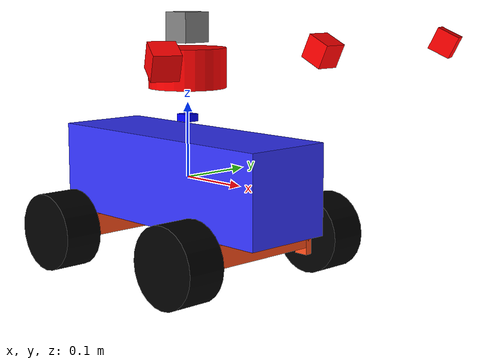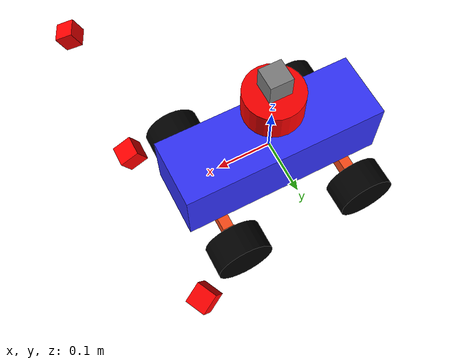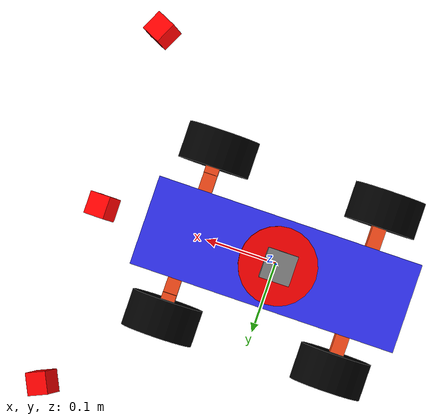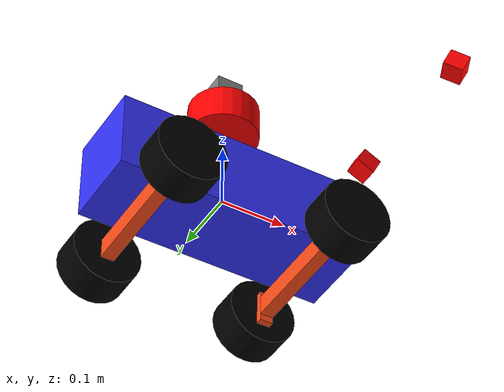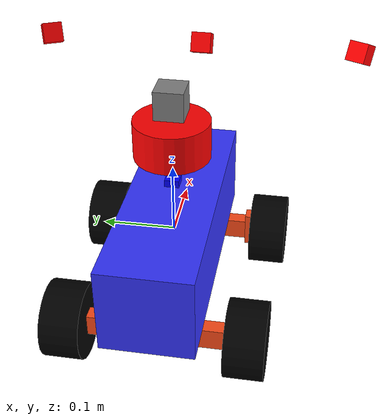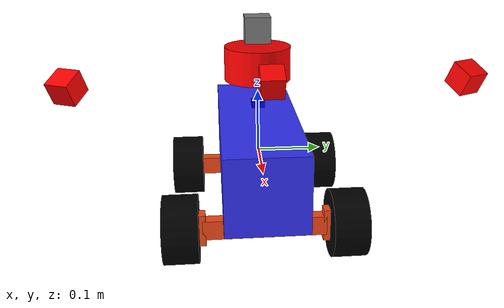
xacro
<?xml version="1.0"?>
<robot xmlns:xacro="http://www.ros.org/wiki/xacro" name="hotel_robot">

    <!-- Example link -->
    <xacro:include filename="properties.xacro"/>
    <xacro:include filename="ackerman_core.xacro"/>
    <xacro:include filename="lidar.xacro"/>
    <xacro:include filename="camera.xacro"/>
    <xacro:include filename="depth_camera.xacro"/>
    <xacro:include filename="imu.xacro"/>

</robot>

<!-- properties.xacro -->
<robot xmlns:xacro="http://www.ros.org/wiki/xacro">
    <!-- Color Definitions -->
    <material name="white">
        <color rgba= "1 1 1 1"/>
    </material>

    <material name="orange">
        <color rgba= "1 0.3 0.1 1"/>
    </material>

    <material name="blue">
        <color rgba= "0.2 0.2 1 1"/>
    </material>

    <material name="Terra">
        <color rgba= "1 0.25 0 1"/>
    </material>

    <material name="black">
        <color rgba= "0 0 0 1"/>
    </material>

    <material name="red">
        <color rgba= "1 0 0 1"/>
    </material>

</robot>

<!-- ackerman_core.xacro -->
<robot xmlns:xacro="http://www.ros.org/wiki/xacro">

    <!-- Example link -->
    <xacro:include filename="inertial_macros.xacro"/>

    <xacro:property name="rad_w" value="0.052"/>
    <xacro:property name="le_w" value="0.053"/>
    <xacro:property name="ly" value="0.125"/>
    <xacro:property name="lx" value="0.375"/>
    <xacro:property name="lz" value="0.12"/>
    <xacro:property name="lx_st" value="0.02"/>
    <xacro:property name="ly_st" value="${ly*3/2}"/>
    <xacro:property name="lz_st" value="0.03 "/>
    <xacro:property name="lx_arm" value="0.02"/>
    <xacro:property name="ly_arm" value="${0.01}"/>
    <xacro:property name="lz_arm" value="0.05"/>

    <xacro:macro name="box_macro" params="
      name
      x y z
      mass
      material">

    <link name="${name}">
      <visual>
        <origin xyz="0 0 0" rpy="0 0 0"/>
        <geometry>
          <box size="${x} ${y} ${z}"/>
        </geometry>
        <material name="${material}"/>
      </visual>

      <collision>
        <origin xyz="0 0 0" rpy="0 0 0"/>
        <geometry>
          <box size="${x} ${y} ${z}"/>
        </geometry>
      </collision>

      <xacro:inertial_box mass="${mass}" x="${x}" y="${y}" z="${z}">
        <origin xyz="0 0 0" rpy="0 0 0"/>
      </xacro:inertial_box>
    </link>
    </xacro:macro>

    <xacro:macro name="wheel_macro" params="
      name
      radius
      width
      mass
      material">

    <link name="${name}">
      <visual>
        <origin xyz="0 0 0" rpy="0 0 0"/>
        <geometry>
          <cylinder radius="${radius}" length="${width}"/>
        </geometry>
        <material name="${material}"/>
      </visual>

      <collision>
        <origin xyz="0 0 0" rpy="0 0 0"/>
        <geometry>
          <cylinder radius="${radius}" length="${width}"/>
        </geometry>
      </collision>

      <xacro:inertial_cylinder
          mass="${mass}"
          radius="${radius}"
          length="${width}">
        <origin xyz="0 0 0" rpy="0 0 0"/>
      </xacro:inertial_cylinder>
    </link>

  </xacro:macro>

    <!-- Example link -->
    <link name="base_link">
    </link>

    <joint name="base_link_joint" type="fixed">
        <parent link="base_link"/>
        <child link="chassis"/>
        <origin xyz="0 0 0"/>
    </joint>

    <!-- chassis link -->
    <xacro:box_macro
    name="chassis"
    x="${lx}"
    y="${ly}"
    z="${lz}"
    mass="5.0"
    material="blue"/>

        <!-- steering link joint -->
    <joint name="steering_link_joint" type="fixed">
        <parent link="chassis"/>
        <child link="steering"/>
        <origin xyz="${lx/3} 0.0 -${(lz + lz_st)/2}" rpy="0 0 0"/>
        <axis xyz="0 0 1"/>
        <dynamics damping="0.2" friction="0.0"/>
    </joint>

      <!-- Steering link -->
    <xacro:box_macro
    name="steering"
    x="${lx_st}"
    y="${ly_st}"
    z="${lz_st}"
    mass="1.0"
    material="orange"/>

    <!-- non-steering link joint -->
    <joint name="nonsteering_link_joint" type="fixed">
        <parent link="chassis"/>
        <child link="nonsteering"/>
        <origin xyz="-${lx/3} 0.0 -${(lz + lz_st)/2}" rpy="0 0 0"/>
        <axis xyz="0 0 1"/>
        <dynamics damping="0.2" friction="0.0"/>
    </joint>

      <!-- Nonsteering link -->
    <xacro:box_macro
    name="nonsteering"
    x="${lx_st}"
    y="${ly_st}"
    z="${lz_st}"
    mass="1.0"
    material="orange"/>

    <!-- Steering arm left joint-->
    <joint name="left_steering_arm_joint" type="revolute">
        <parent link="steering"/>
        <child link="left_steering_arm"/>
        <origin xyz="0 ${ly_st/2} 0"/>
        <axis xyz="0 0 1"/>
        <limit lower="-0.6" upper="0.6" effort="10" velocity="1"/>
    </joint>

    <!-- Steering arm front left -->
    <xacro:box_macro
    name="left_steering_arm"
    x="${lx_arm}"
    y="${ly_arm}"
    z="${lz_arm}"
    mass="1.0"
    material="orange"/>

    <!-- left front wheel joint -->
    <joint name="left_front_wheel_spinning_joint" type="continuous">
        <parent link="left_steering_arm"/>
        <child link="left_front_wheel"/>
        <origin xyz="0.0 ${ly_arm/2+le_w/2} 0.0" rpy="-${pi/2} 0 0"/>
        <axis xyz="0 0 1"/>
        <dynamics damping="0.2" friction="0.0"/>
    </joint>

    <!-- left front wheel link -->
    <xacro:wheel_macro
    name="left_front_wheel"
    radius="${rad_w}"
    width="${le_w}"
    mass="0.1"
    material="black"/>

        <!-- left back wheel joint -->
    <joint name="left_back_wheel_joint" type="continuous">
        <parent link="nonsteering"/>
        <child link="left_back_wheel"/>
        <origin xyz="0.0 ${ly_st/2+le_w/2} 0.0" rpy="-${pi/2} 0 0"/>
        <axis xyz="0 0 1"/>
        <dynamics damping="0.2" friction="0.0"/>
    </joint>

    <!-- left back wheel link -->
    <xacro:wheel_macro
    name="left_back_wheel"
    radius="${rad_w}"
    width="${le_w}"
    mass="0.1"
    material="black"/>

        <!-- Steering arm left joint-->
    <joint name="right_steering_arm_joint" type="revolute">
        <parent link="steering"/>
        <child link="right_steering_arm"/>
        <origin xyz="0 -${ly_st/2} 0"/>
        <axis xyz="0 0 1"/>
        <limit lower="-0.6" upper="0.6" effort="10" velocity="1"/>
    </joint>

    <!-- Steering arm front left -->
    <xacro:box_macro
    name="right_steering_arm"
    x="${lx_arm}"
    y="${ly_arm}"
    z="${lz_arm}"
    mass="1.0"
    material="orange"/>

    <!-- right front wheel joint -->
    <joint name="right_front_wheel_spinning_joint" type="continuous">
        <parent link="right_steering_arm"/>
        <child link="right_front_wheel"/>
        <origin xyz="0.0 -${ly_arm/2+le_w/2} 0.0" rpy="${pi/2} 0 0"/>
        <axis xyz="0 0 -1"/>
        <dynamics damping="0.2" friction="0.0"/>
    </joint>

    <!-- right front wheel link -->
    <xacro:wheel_macro
    name="right_front_wheel"
    radius="${rad_w}"
    width="${le_w}"
    mass="0.1"
    material="black"/>

        <!-- right back wheel joint -->
    <joint name="right_back_wheel_joint" type="continuous">
        <parent link="nonsteering"/>
        <child link="right_back_wheel"/>
        <origin xyz="0.0 -${ly_st/2+le_w/2} 0.0" rpy="${pi/2} 0 0"/>
        <axis xyz="0 0 -1"/>
        <dynamics damping="0.2" friction="0.0"/>
    </joint>

    <!-- right back wheel link -->
    <xacro:wheel_macro
    name="right_back_wheel"
    radius="${rad_w}"
    width="${le_w}"
    mass="0.1"
    material="black"/>

</robot>

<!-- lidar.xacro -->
<robot xmlns:xacro="http://www.ros.org/wiki/xacro" >

    <!-- Lidar link -->
    <link name="lidar_link">
         <visual>
            <geometry>
                <cylinder radius="${rad_w}" length="${le_w}"/>
            </geometry>
            <material name="red"/>
        </visual>
        <collision>
            <geometry>
                <cylinder radius="${rad_w}" length="${le_w}"/>
            </geometry>
        </collision>
        <xacro:inertial_cylinder mass="0.1" length="${le_w}" radius="${rad_w}">
            <origin xyz="0 0 0" rpy="0 0 0"/>
        </xacro:inertial_cylinder>
    </link>

    <joint name="lidar_chassis_joint" type="fixed">
        <parent link="chassis"/>
        <child link="lidar_link"/>
        <origin xyz="0 0 ${le_w/2+lz}" rpy="0 0 0"/>
    </joint>

    <gazebo reference="lidar_link">
    <sensor name="lidar" type="gpu_lidar">
        <always_on>true</always_on>
        <update_rate>10</update_rate>
        <visualize>true</visualize>
        <topic>scan</topic>
        <gz_frame_id>lidar_link</gz_frame_id>

        <lidar>
        <scan>
            <horizontal>
            <samples>720</samples>
            <min_angle>-3.14159</min_angle>
            <max_angle>3.14159</max_angle>
            </horizontal>
        </scan>
        <range>
            <min>0.12</min>
            <max>12.0</max>
        </range>
        </lidar>
    </sensor>
    </gazebo>

</robot>

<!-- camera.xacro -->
<robot xmlns:xacro="http://www.ros.org/wiki/xacro" >
    <xacro:macro name="hotel_camera" params="name topic frame">
    <link name="${frame}">
    <visual>
        <geometry>
        <box size="0.03 0.03 0.03"/>
        </geometry>
        <material name="red"/>
    </visual>
    <collision>
        <geometry>
        <box size="0.03 0.03 0.03"/>
        </geometry>
    </collision>
    <inertial>
        <mass value="0.05"/>
        <origin xyz="0 0 0" rpy="0 0 0"/>
        <inertia ixx="1e-5" ixy="0" ixz="0" iyy="1e-5" iyz="0" izz="1e-5"/>
    </inertial>
    </link>

    <gazebo reference="${frame}">
    <sensor name="${name}" type="camera">
        <always_on>true</always_on>
        <update_rate>30</update_rate>
        <visualize>false</visualize>
        <topic>${topic}</topic>
        <gz_frame_id>${frame}</gz_frame_id>

        <camera>
        <horizontal_fov>1.047</horizontal_fov>
        <image>
            <width>640</width>
            <height>480</height>
            <format>R8G8B8</format>
        </image>
        <clip>
            <near>0.05</near>
            <far>50</far>
        </clip>
        </camera>
    </sensor>
    </gazebo>
    </xacro:macro>

    <xacro:hotel_camera name="front_camera" topic="camera/image" frame="camera_link"/>
    <xacro:hotel_camera name="left_lane_camera" topic="left_camera/image" frame="left_camera_link"/>
    <xacro:hotel_camera name="right_lane_camera" topic="right_camera/image" frame="right_camera_link"/>

    <joint name="camera_chassis_joint" type="fixed">
    <parent link="chassis"/>
    <child link="camera_link"/>
    <!-- Mounted beyond the front edge of the 0.4 m chassis, tilted toward the road. -->
    <origin xyz="0.24 0 0.18" rpy="0 0.45 0"/>
    </joint>

    <joint name="left_camera_chassis_joint" type="fixed">
    <parent link="chassis"/>
    <child link="left_camera_link"/>
    <!-- Lane cameras stay outside the body but still look mostly forward. -->
    <origin xyz="0.24 0.24 0.18" rpy="0 0.45 0.45"/>
    </joint>

    <joint name="right_camera_chassis_joint" type="fixed">
    <parent link="chassis"/>
    <child link="right_camera_link"/>
    <!-- Lane cameras stay outside the body but still look mostly forward. -->
    <origin xyz="0.24 -0.24 0.18" rpy="0 0.45 -0.45"/>
    </joint>

</robot>

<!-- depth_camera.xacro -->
<robot xmlns:xacro="http://www.ros.org/wiki/xacro" >
    <link name="depth_camera_link">
    <visual>
        <geometry>
        <box size="0.04 0.04 0.04"/>
        </geometry>
        <material name="gray">
        <color rgba="0.5 0.5 0.5 1"/>
        </material>
    </visual>

    <collision>
        <geometry>
        <box size="0.04 0.04 0.04"/>
        </geometry>
    </collision>

    <inertial>
        <mass value="0.05"/>
        <origin xyz="0 0 0"/>
        <inertia
        ixx="1e-5" ixy="0" ixz="0"
        iyy="1e-5" iyz="0"
        izz="1e-5"/>
    </inertial>
    </link>

    <joint name="depth_camera_joint" type="fixed">
    <parent link="base_link"/>
    <child link="depth_camera_link"/>
    <!-- posición delante y arriba del robot -->
    <origin xyz="0 0 0.2" rpy="0 0 0"/>
    </joint>

    <gazebo reference="depth_camera_link">
    <sensor name="depth_camera" type="depth">
        <always_on>true</always_on>
        <update_rate>30</update_rate>
        <visualize>true</visualize>

        <!-- raíz del tópico -->
        <topic>depth_camera</topic>
        <frame_id>depth_camera_link</frame_id>

        <camera>
        <horizontal_fov>1.047</horizontal_fov>

        <image>
            <width>640</width>
            <height>480</height>
            <format>R8G8B8</format>
        </image>

        <clip>
            <near>0.05</near>
            <far>5.0</far>
        </clip>
        </camera>
    </sensor>
    </gazebo>
</robot>

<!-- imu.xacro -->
<robot xmlns:xacro="http://www.ros.org/wiki/xacro">

    <!--  GZ-SIM IMU SYSTEM (attached to the robot model)       -->
    <!--  Esto evita modificar el world.sdf                     -->
    <gazebo>
        <plugin filename="gz-sim-imu-system"
                name="gz::sim::systems::Imu"/>
    </gazebo>

    <!-- IMU LINK                      -->

    <link name="imu_link">
        <visual>
            <geometry>
                <box size="0.02 0.02 0.01"/>
            </geometry>
            <material name="blue">
                <color rgba="0 0 1 1"/>
            </material>
        </visual>

        <collision>
            <geometry>
                <box size="0.02 0.02 0.01"/>
            </geometry>
        </collision>

        <!-- Usamos la macro de inercia que ya tienes -->
        <xacro:inertial_box mass="0.02" x="0.02" y="0.02" z="0.01">
            <origin xyz="0 0 0" rpy="0 0 0"/>
        </xacro:inertial_box>
    </link>

    <!-- IMU JOINT (fijo al chassis)   -->

    <joint name="imu_joint" type="fixed">
        <parent link="chassis"/>
        <child link="imu_link"/>
        <!-- Encima del robot -->
        <origin xyz="0 0 ${lz/2 + 0.02}" rpy="0 0 0"/>
    </joint>

    <!-- GAZEBO IMU SENSOR             -->

    <gazebo reference="imu_link">
        <sensor name="imu_sensor" type="imu">
            <always_on>true</always_on>
            <update_rate>100</update_rate>
            <visualize>false</visualize>

            <!-- Topic en Gazebo Transport (luego lo puenteas a ROS) -->
            <topic>imu</topic>

            <imu>
                <angular_velocity>
                    <x>
                        <noise type="gaussian">
                            <mean>0.0</mean>
                            <stddev>0.0002</stddev>
                        </noise>
                    </x>
                    <y>
                        <noise type="gaussian">
                            <mean>0.0</mean>
                            <stddev>0.0002</stddev>
                        </noise>
                    </y>
                    <z>
                        <noise type="gaussian">
                            <mean>0.0</mean>
                            <stddev>0.0002</stddev>
                        </noise>
                    </z>
                </angular_velocity>

                <linear_acceleration>
                    <x>
                        <noise type="gaussian">
                            <mean>0.0</mean>
                            <stddev>0.017</stddev>
                        </noise>
                    </x>
                    <y>
                        <noise type="gaussian">
                            <mean>0.0</mean>
                            <stddev>0.017</stddev>
                        </noise>
                    </y>
                    <z>
                        <noise type="gaussian">
                            <mean>0.0</mean>
                            <stddev>0.017</stddev>
                        </noise>
                    </z>
                </linear_acceleration>
            </imu>

        </sensor>
    </gazebo>

</robot>
